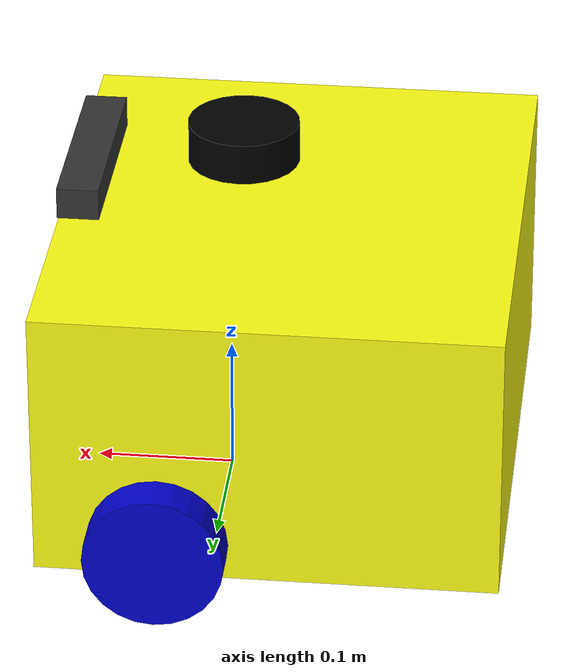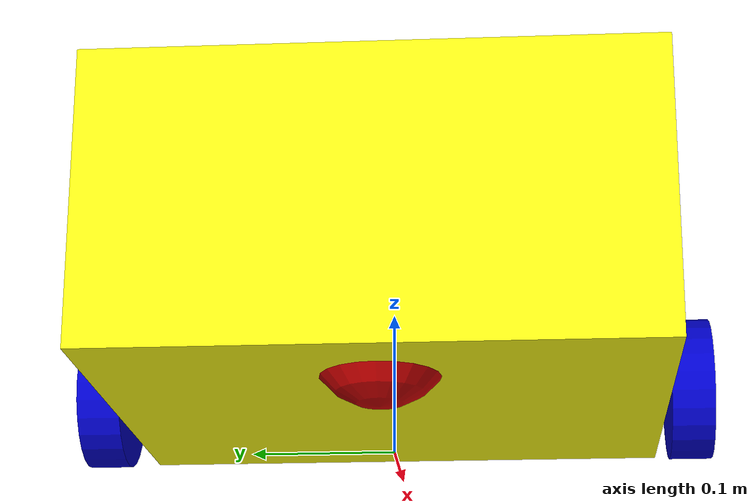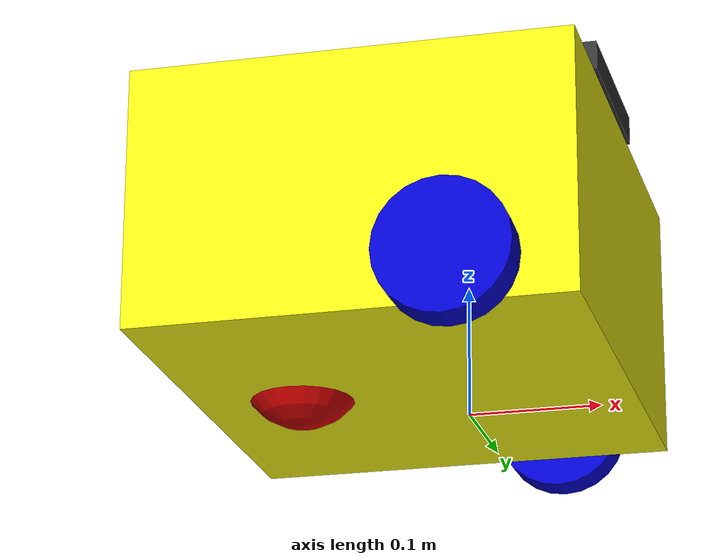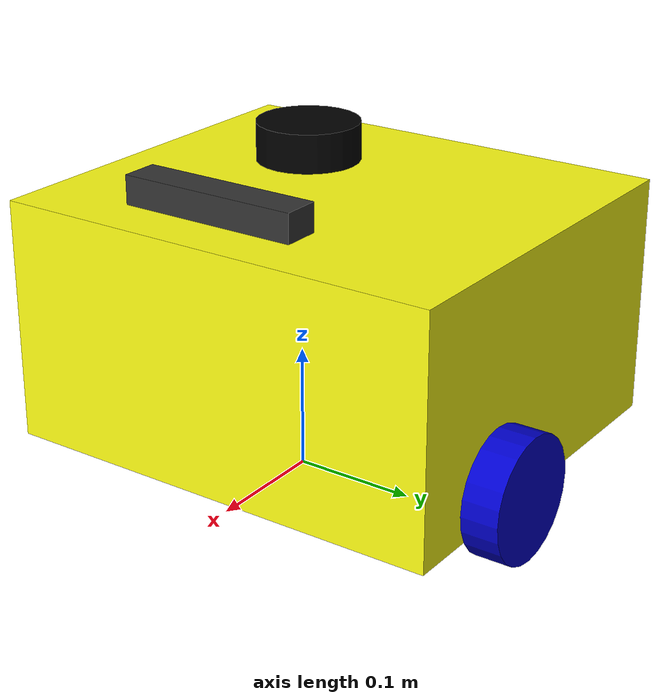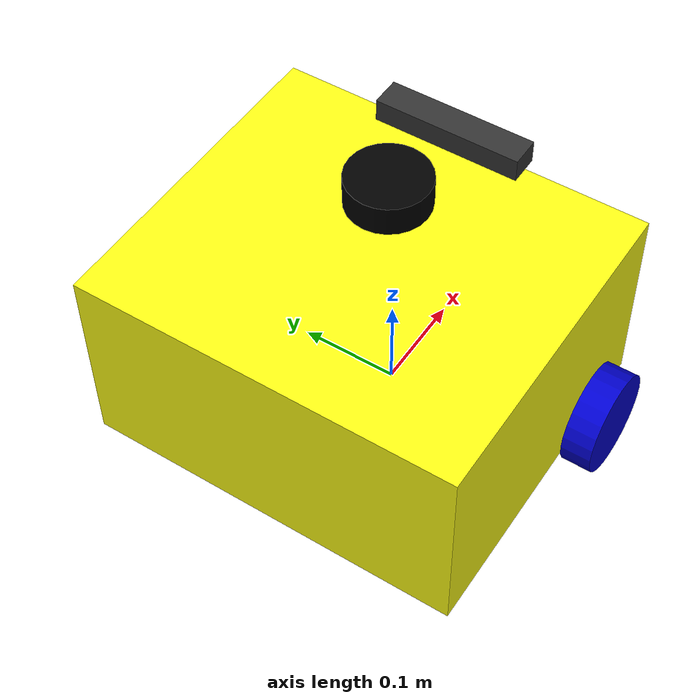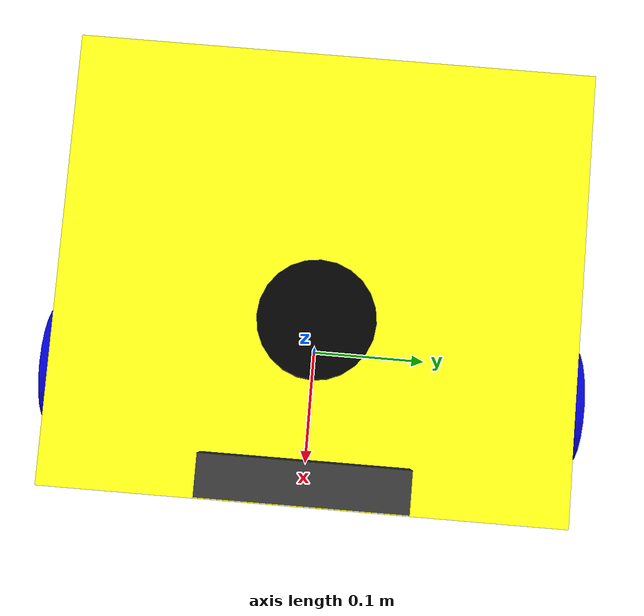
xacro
<?xml version="1.0"?>
<robot name="myrobotagv" xmlns:xacro="http://www.ros.org/wiki/xacro">

  <!-- Include phần hình dáng robot -->
  <xacro:include filename="$(find mobile_robot)/urdf/new_robot_2.xacro"/>

  <!-- Include ros2_control REAL hardware -->
  <xacro:include filename="$(find mobile_robot)/urdf/ros2_control_real.xacro"/>

</robot>

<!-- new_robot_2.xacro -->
<robot xmlns:xacro="http://www.ros.org/wiki/xacro">

<!--matierials.xacro-->
	<material name="black">
		<color rgba="0.0 0.0 0.0 1.0"/>
	</material>

	<material name="blue">
		<color rgba="0.0 0.0 0.8 1.0"/>
	</material>

	<material name="green">
		<color rgba="0.0 0.8 0.0 1.0"/>
	</material>

	<material name="grey">
		<color rgba="0.2 0.2 0.2 1.0"/>
	</material>

	<material name="orange">
		<color rgba="${255/255} ${108/255} ${10/255} 1.0"/>
	</material>

	<material name="brown">
		<color rgba="${222/255} ${207/255} ${195/255} 1.0"/>
	</material>

	<material name="red">
		<color rgba="0.8 0.0 0.0 1.0"/>
	</material>

	<material name="white">
		<color rgba="1.0 1.0 1.0 1.0"/>
	</material>

	<material name="yellow" >
    	<color rgba="1.0 1.0 0.0784313725490196 1.0" />
	</material>

	<material name="stainless">
		<color rgba="${224/255} ${223/255} ${219/255} 1.0"/>
	</material>

	<material name="aluminium">
		<color rgba="${132/255} ${135/255} ${137/255} 1.0"/>
	</material>

<!--define physical properties for robot-->
	<xacro:property name="body_length" value="0.33"/>
	<xacro:property name="body_width" value="0.38"/>
	<xacro:property name="body_height" value="0.2"/>
	<xacro:property name="body_mass" value="12"/>

	<xacro:property name="wheel_radius" value="0.05"/>
	<xacro:property name="wheel_width" value="0.03"/>
	<xacro:property name="wheel_mass" value="0.3"/>
	<xacro:property name="wheel_separation" value="0.42"/>
	<xacro:property name="PI" value="3.1415926535897931"/>

	<xacro:macro name="cylinder_inertia" params="m r h">
		<inertia ixx="${m*(3*r*r+h*h)/12}" ixy = "0" ixz = "0"
		         iyy="${m*(3*r*r+h*h)/12}" iyz = "0"
		         izz="${m*r*r/2}"/>
	</xacro:macro>

	<xacro:macro name="box_inertia" params="m l w h">
		<inertia ixx="${m*(h*h+l*l)/12}" ixy = "0" ixz = "0"
		         iyy="${m*(w*w+h*h)/12}" iyz = "0"
		         izz="${m*(w*w+l*l)/12}" />
	</xacro:macro>

<!--base link-->
    <joint name="base_footprint_joint" type="fixed">
       	<origin xyz="0.0 0.0 ${wheel_radius}" rpy="0.0 0.0 0.0"/>
        <parent link="base_footprint"/>
        <child link="base_link"/>
    </joint>

    <link name="base_footprint">
    	<origin xyz="0.0 0.0 0.0"/>
    </link>

	<link name="base_link">
       	<origin xyz="0.0 0.0 0.0"/>
    </link>

<!--chassis link-->
    <joint name="chassis_joint" type="fixed">
        <parent link="base_link"/>
        <child link="chassis"/>
        <origin xyz="0.16 0.0 0.0"/>
    </joint>

    <link name="chassis">
        <visual>
            <origin xyz="-0.2055 0.0 0.07" rpy="0.0 0.0 0.0"/>
            <geometry>
                 <box size="${body_length} ${body_width} ${body_height}"/>
            </geometry>
            <material name="yellow"/>
        </visual>

        <collision>
            <origin xyz="-0.2055 0.0 0.07" rpy="0.0 0.0 0.0"/>
            <geometry>
                 <box size="${body_length} ${body_width} ${body_height}"/>
            </geometry>
        </collision>

        <inertial>
            <origin xyz="-0.2055 0.0 0.07" rpy="0.0 0.0 0.0"/>
            <mass value="${body_mass}"/>
            <xacro:box_inertia m="${body_mass}" l="${body_length}" w="${body_width}" h="${body_height}"/>
        </inertial>
    </link>

<!--right wheel-->
    <joint name="right_wheel_joint" type="continuous">
        <parent link="base_link"/>
        <child link="right_wheel"/>
        <origin xyz="0.03 -0.21 0.0" rpy="${PI/2} 0 0"/>
        <axis xyz="0 0 -1"/>
    </joint>

    <link name="right_wheel">
        <visual>
           	<geometry>
             	<cylinder radius="${wheel_radius}" length="${wheel_width}"/>
           	</geometry>
           		<material name="blue"/>
        </visual>

        <collision>
           	<geometry>
             	<cylinder radius="${wheel_radius}" length="${wheel_width}"/>
           	</geometry>
        </collision>

       	<inertial>
            <mass value="${wheel_mass}"/>
            <xacro:cylinder_inertia m="${wheel_mass}" r="${wheel_radius}" h="${wheel_width}"/>
        	</inertial>
    </link>

<!--left wheel-->
	<joint name="left_wheel_joint" type="continuous">
       	<parent link="base_link"/>
        <child link="left_wheel"/>
        <origin xyz="0.03 0.21 0.0" rpy="${-PI/2} 0.0 0.0"/>
        <axis xyz="0 0 1"/>
    </joint>

	<link name="left_wheel">
        <visual>
           	<geometry>
             	<cylinder radius="${wheel_radius}" length="${wheel_width}"/>
           	</geometry>
           	<material name="blue"/>
        </visual>

        <collision>
           	<geometry>
             	<cylinder radius="${wheel_radius}" length="${wheel_width}"/>
           	</geometry>
        </collision>

        <inertial>
            <mass value="${wheel_mass}"/>
            <xacro:cylinder_inertia m="${wheel_mass}" r="${wheel_radius}" h="${wheel_width}"/>
        </inertial>
	</link>

<!--caster wheel-->
	<joint name = "caster_wheel_joint" type = "fixed" >
		<parent link = "base_link" />
		<child link = "caster_wheel" />
		<origin xyz = "-0.13 0 0.0" />
	</joint>

	<link name = "caster_wheel" >
		<visual>
			<geometry>
				<sphere radius = "0.05" />
			</geometry>
			<material name = "red" />
		</visual>

		<collision>
			<geometry>
				<sphere radius = "0.05" />
			</geometry>
		</collision>

		<inertial>
            <mass value="0.1" />
            <inertia ixx="0.1" ixy="0.0" ixz="0.0"
                iyy="0.1" iyz="0.0"
                izz="0.1" />
        </inertial>
	</link>

<!--lidar-->
	<joint name="joint_scan" type="fixed">
		<origin xyz="0 0 0.26" rpy="0 0 ${PI}"/>
		<parent link="base_link"/>
		<child link="laser"/>
	</joint>

    <link name="laser">
        <visual>
            <origin xyz="0.01 0.0 -0.04" rpy="0.0 0.0 0.0"/>
            <geometry>
                <cylinder radius="0.04" length="0.03"/>
            </geometry>
            <material name="black"/>
        </visual>

        <collision>
            <origin xyz="0.01 0.0 -0.04" rpy="0.0 0.0 0.0"/>
            <geometry>
                <cylinder radius="0.04" length="0.03"/>
            </geometry>
        </collision>

        <inertial>
            <origin xyz="0.01 0.0 -0.04" rpy="0.0 0.0 0.0"/>
            <mass value="0.114"/>
            <inertia ixx="0.01" ixy="0.0" ixz="0.0" iyy="0.01" iyz="0.0" izz="0.01"/>
        </inertial>
    </link>

	<!-- Thân ZED2 (body) -->
	<link name="zed2_link">
		<visual>
			<origin xyz="0 0 0" rpy="0 0 0"/>
			<geometry>
				<!-- 146.5 x 30 x 23 mm -->
				<box size="0.03 0.1465 0.023"/>
			</geometry>
			<material name="grey"/>
		</visual>
		<collision>
			<origin xyz="0 0 0" rpy="0 0 0"/>
			<geometry>
				<box size="0.03 0.1465 0.023"/>
			</geometry>
		</collision>
		<inertial>
			<mass value="0.5"/>
			<origin xyz="0 0 0" rpy="0 0 0"/>
			<inertia ixx="0.01" iyy="0.01" izz="0.01" ixy="0" ixz="0" iyz="0"/>
		</inertial>
	</link>

	<joint name="zed2_joint" type="fixed">
		<parent link="base_link"/>
		<child link="zed2_link"/>
		<!-- Camera 3cm above body top (body top at 0.17) -->
		<origin xyz="0.10 0.0 0.20"/>
	</joint>

	<!-- Left Camera (U26) -->
	<link name="zed2_left_camera_frame"/>
	<joint name="zed2_left_camera_joint" type="fixed">
		<parent link="zed2_link"/>
		<child link="zed2_left_camera_frame"/>
		<!-- 9.3 mm từ mép trái: -0.07325 m so với tâm -->
		<origin xyz="0 -0.07325 0"/>
	</joint>

	<!-- Right Camera (U36) -->
	<link name="zed2_right_camera_frame"/>
	<joint name="zed2_right_camera_joint" type="fixed">
		<parent link="zed2_link"/>
		<child link="zed2_right_camera_frame"/>
		<!-- 129.3 mm từ mép trái: +0.07325 m so với tâm -->
		<origin xyz="0 0.07325 0"/>
	</joint>
	<!--  End ZED2 -->

	<!-- IMU (trên mặt robot, phía trước base_link) -->
    <link name="imu_link"/>

    <joint name="imu_joint" type="fixed">
        <parent link="base_link"/>
        <child link="imu_link"/>
        <origin xyz="0.13 0.0 0.27" rpy="0 0 0"/>
    </joint>
    <!-- End IMU -->

</robot>
